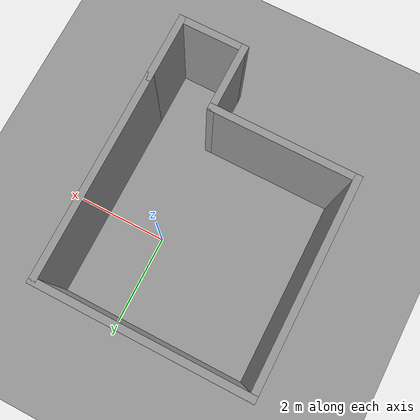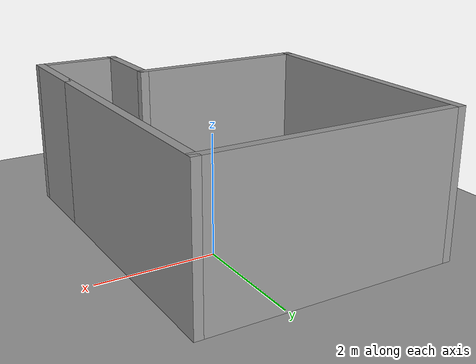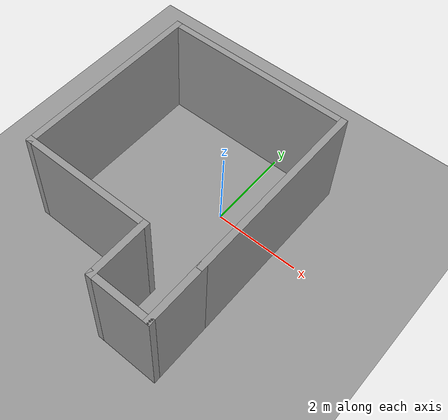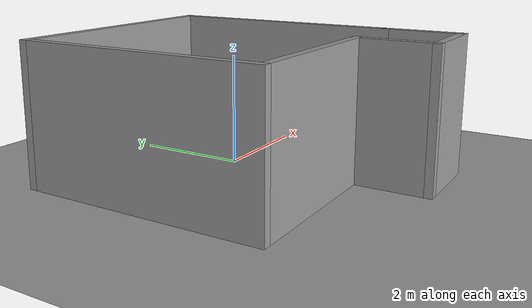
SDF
<sdf version="1.6">
 <world name="default">
  <light name="sun" type="directional">
   <pose>0 0 10 0 -0 0</pose>
   <diffuse>0.8 0.8 0.8 1</diffuse>
   <specular>0.2 0.2 0.2 1</specular>
   <attenuation>
    <range>1000</range>
    <constant>0.9</constant>
    <linear>0.01</linear>
    <quadratic>0.001</quadratic>
   </attenuation>
   <direction>0.5 0.1 -0.9</direction>
  </light>
  <scene><ambient>0.4 0.4 0.4 1</ambient><background>0.7 0.7 0.7 1</background><shadows>1</shadows></scene>
  <physics name="default_physics" default="0" type="ode">
   <max_step_size>0.01</max_step_size>
   <real_time_factor>1</real_time_factor>
   <real_time_update_rate>100</real_time_update_rate>
  </physics>
  <model name="Room">
   <pose>-0.787674 -0.854457 0 0 -0 0</pose>
   <link name="Wall_46">
    <collision name="Wall_46_Collision">
     <geometry><box><size>4.5 0.15 2.5</size></box></geometry>
     <pose>0 0 1.25 0 -0 0</pose>
    </collision>
    <visual name="Wall_46_Visual">
     <pose>0 0 1.25 0 -0 0</pose>
     <geometry><box><size>4.5 0.15 2.5</size></box></geometry>
     <material>
      <script><uri>file://media/materials/scripts/gazebo.material</uri><name>Gazebo/Grey</name></script>
      <ambient>1 1 1 1</ambient>
     </material>
    </visual>
    <pose>0 2.85 0 0 -0 0</pose>
   </link>
   <link name="Wall_47">
    <collision name="Wall_47_Collision">
     <geometry><box><size>4.5 0.15 2.5</size></box></geometry>
     <pose>0 0 1.25 0 -0 0</pose>
    </collision>
    <visual name="Wall_47_Visual">
     <pose>0 0 1.25 0 -0 0</pose>
     <geometry><box><size>4.5 0.15 2.5</size></box></geometry>
     <material>
      <script><uri>file://media/materials/scripts/gazebo.material</uri><name>Gazebo/Grey</name></script>
      <ambient>1 1 1 1</ambient>
     </material>
    </visual>
    <pose>2.175 0.675 0 0 0 -1.5708</pose>
   </link>
   <link name="Wall_49">
    <collision name="Wall_49_Collision">
     <geometry><box><size>4.5 0.15 2.5</size></box></geometry>
     <pose>0 0 1.25 0 -0 0</pose>
    </collision>
    <visual name="Wall_49_Visual">
     <pose>0 0 1.25 0 -0 0</pose>
     <geometry><box><size>4.5 0.15 2.5</size></box></geometry>
     <material>
      <script><uri>file://media/materials/scripts/gazebo.material</uri><name>Gazebo/Grey</name></script>
      <ambient>1 1 1 1</ambient>
     </material>
    </visual>
    <pose>-2.175 0.675 0 0 0 -1.5708</pose>
   </link>
   <link name="Wall_51">
    <collision name="Wall_51_Collision">
     <geometry><box><size>1.5 0.15 2.5</size></box></geometry>
     <pose>0 0 1.25 0 -0 0</pose>
    </collision>
    <visual name="Wall_51_Visual">
     <pose>0 0 1.25 0 -0 0</pose>
     <geometry><box><size>1.5 0.15 2.5</size></box></geometry>
     <material>
      <script><uri>file://media/materials/scripts/gazebo.material</uri><name>Gazebo/Grey</name></script>
      <ambient>1 1 1 1</ambient>
     </material>
    </visual>
    <pose>2.175 -2.175 0 0 0 -1.5708</pose>
   </link>
   <link name="Wall_52">
    <collision name="Wall_52_Collision">
     <geometry><box><size>1.5 0.15 2.5</size></box></geometry>
     <pose>0 0 1.25 0 -0 0</pose>
    </collision>
    <visual name="Wall_52_Visual">
     <pose>0 0 1.25 0 -0 0</pose>
     <geometry><box><size>1.5 0.15 2.5</size></box></geometry>
     <material>
      <script><uri>file://media/materials/scripts/gazebo.material</uri><name>Gazebo/Grey</name></script>
      <ambient>1 1 1 1</ambient>
     </material>
    </visual>
    <pose>1.5 -2.85 0 0 -0 3.14159</pose>
   </link>
   <link name="Wall_53">
    <collision name="Wall_53_Collision">
     <geometry><box><size>1.5 0.15 2.5</size></box></geometry>
     <pose>0 0 1.25 0 -0 0</pose>
    </collision>
    <visual name="Wall_53_Visual">
     <pose>0 0 1.25 0 -0 0</pose>
     <geometry><box><size>1.5 0.15 2.5</size></box></geometry>
     <material>
      <script><uri>file://media/materials/scripts/gazebo.material</uri><name>Gazebo/Grey</name></script>
      <ambient>1 1 1 1</ambient>
     </material>
    </visual>
    <pose>0.825 -2.175 0 0 -0 1.5708</pose>
   </link>
   <link name="Wall_54">
    <collision name="Wall_54_Collision">
     <geometry><box><size>3.15 0.15 2.5</size></box></geometry>
     <pose>0 0 1.25 0 -0 0</pose>
    </collision>
    <visual name="Wall_54_Visual">
     <pose>0 0 1.25 0 -0 0</pose>
     <geometry><box><size>3.15 0.15 2.5</size></box></geometry>
     <material>
      <script><uri>file://media/materials/scripts/gazebo.material</uri><name>Gazebo/Grey</name></script>
      <ambient>1 1 1 1</ambient>
     </material>
    </visual>
    <pose>-0.675 -1.5 0 0 -0 3.14159</pose>
   </link>
   <static>1</static>
  </model>
  <model name="ground_plane_0">
   <static>1</static>
   <link name="link">
    <collision name="collision">
     <geometry><plane><normal>0 0 1</normal><size>100 100</size></plane></geometry>
     <surface><friction><ode><mu>100</mu><mu2>50</mu2></ode></friction></surface>
    </collision>
    <visual name="visual">
     <cast_shadows>0</cast_shadows>
     <geometry><plane><normal>0 0 1</normal><size>100 100</size></plane></geometry>
     <material>
      <script><uri>file://media/materials/scripts/gazebo.material</uri><name>Gazebo/Grey</name></script>
     </material>
    </visual>
    <velocity_decay><linear>0</linear><angular>0</angular></velocity_decay>
   </link>
   <pose>0.497681 0 0 0 -0 0</pose>
  </model>
  <gravity>0 0 -9.8</gravity>
  <magnetic_field>6e-06 2.3e-05 -4.2e-05</magnetic_field>
  <atmosphere type="adiabatic"/>
  <spherical_coordinates>
   <surface_model>EARTH_WGS84</surface_model>
   <latitude_deg>0</latitude_deg>
   <longitude_deg>0</longitude_deg>
   <elevation>0</elevation>
   <heading_deg>0</heading_deg>
  </spherical_coordinates>
 </world>
</sdf>
